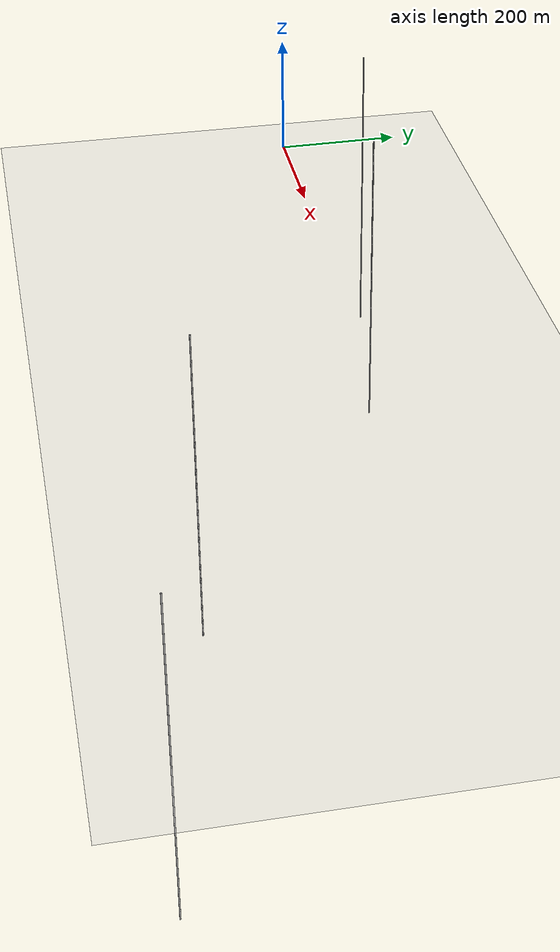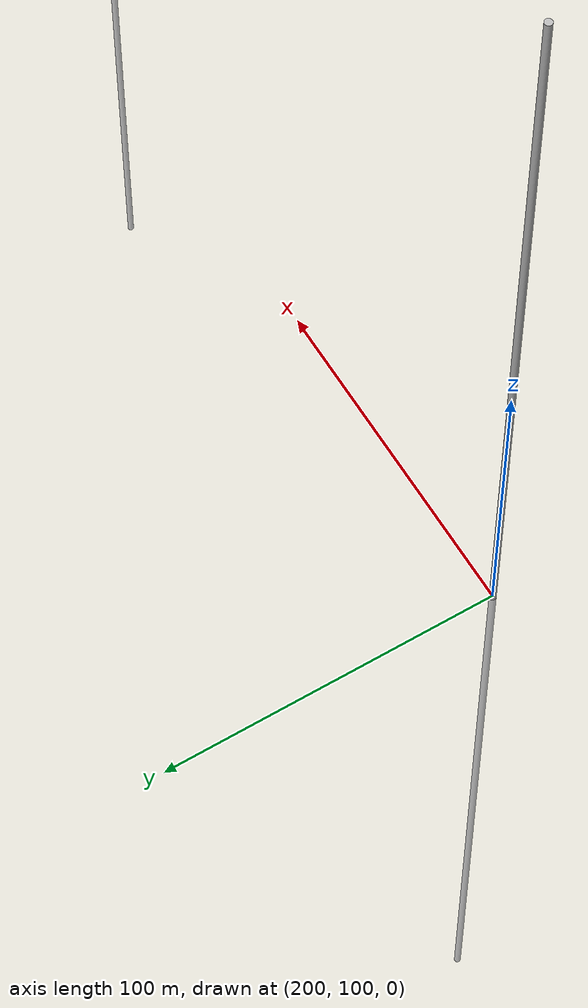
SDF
<sdf version="1.6">
 <world name="default">
  <physics name="default_physics" type="ode">
   <max_step_size>0.001</max_step_size>
   <real_time_update_rate>1000</real_time_update_rate>
   <ode>
    <solver><type>quick</type><iters>50</iters><sor>1.0</sor></solver>
    <constraints><cfm>0.0</cfm><erp>0.2</erp></constraints>
   </ode>
  </physics>
  <include><uri>model://sun</uri></include>
  <include><uri>model://custom_ground</uri></include>
  <spherical_coordinates>
   <surface_model>EARTH_WGS84</surface_model>
   <latitude_deg>38.161479</latitude_deg>
   <longitude_deg>-122.454630</longitude_deg>
   <elevation>488.0</elevation>
   <heading_deg>90</heading_deg>
  </spherical_coordinates>
  <model name="cylinder_2">
   <static>true</static>
   <link name="link">
    <visual name="visual">
     <geometry><cylinder><radius>1</radius><length>500</length></cylinder></geometry>
    </visual>
   </link>
   <pose>200 100 0 0 0 0</pose>
  </model>
  <model name="cylinder_3">
   <static>true</static>
   <link name="link">
    <visual name="visual">
     <geometry><cylinder><radius>1</radius><length>500</length></cylinder></geometry>
    </visual>
   </link>
   <pose>500 50 0 0 0 0</pose>
  </model>
  <model name="cylinder_4">
   <static>true</static>
   <link name="link">
    <visual name="visual">
     <geometry><cylinder><radius>1</radius><length>500</length></cylinder></geometry>
    </visual>
   </link>
   <pose>1000 -300 0 0 0 0</pose>
  </model>
  <model name="cylinder_5">
   <static>true</static>
   <link name="link">
    <visual name="visual">
     <geometry><cylinder><radius>1</radius><length>500</length></cylinder></geometry>
    </visual>
   </link>
   <pose>1500 -400 0 0 0 0</pose>
  </model>
 </world>
</sdf>

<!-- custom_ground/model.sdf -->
<sdf version="1.6">
  <model name="custom_ground">
    <static>true</static> <!-- Ground is static and immovable -->
    <link name="ground_link">
      <pose>240 0 0 0 0 0</pose> <!-- Position and orientation relative to the world -->
      <!-- Visual Representation -->
      <visual name="ground_visual">
        <geometry>
          <plane>
            <normal>0 0 1</normal> <!-- Upward facing plane -->
            <size>500 500</size> <!-- Size of the plane -->
          </plane>
        </geometry>
        <material>
          <script>
            <uri>model://materials/scripts/sand_pebbles.material</uri>
            <name>custom_ground/Image</name>
          </script>
        </material>
      </visual>

      <!-- Collision Representation -->
      <collision name="ground_collision">
        <geometry>
          <plane>
            <normal>0 0 1</normal>
            <size>100 100</size>
          </plane>
        </geometry>
      </collision>

    </link>
  </model>
</sdf>
